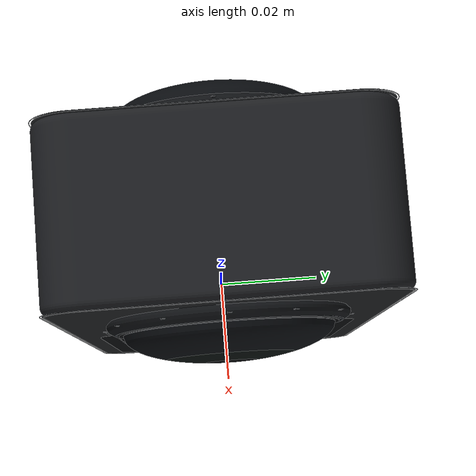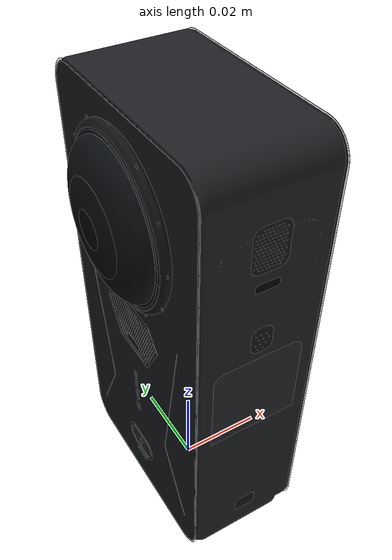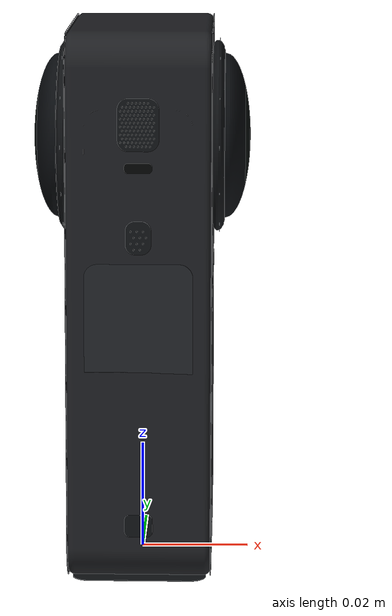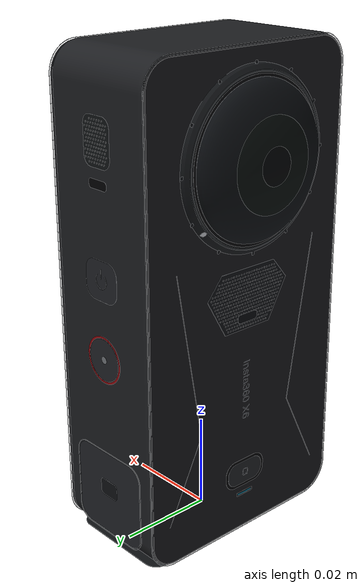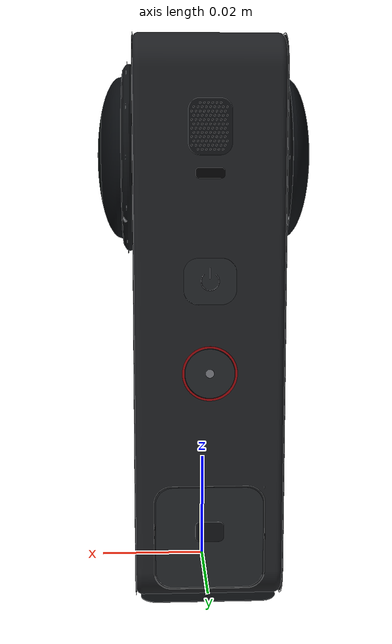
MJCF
<?xml version='1.0' encoding='utf-8'?>
<mujoco model="x6">
  <!--Independent approximate geometry; fixed sites are geometric references, not calibrated optical frames.-->
  <compiler angle="radian" inertiafromgeom="false" strippath="false" />
  <option timestep="0.002" gravity="0 0 -9.81" />
  <asset>
    <mesh name="x6_visual_mesh_0" file="../assets/meshes/visual/aperture.obj" scale="1 1 1" inertia="shell" />
    <mesh name="x6_visual_mesh_1" file="../assets/meshes/visual/coating_edge.obj" scale="1 1 1" inertia="shell" />
    <mesh name="x6_visual_mesh_2" file="../assets/meshes/visual/control.obj" scale="1 1 1" inertia="shell" />
    <mesh name="x6_visual_mesh_3" file="../assets/meshes/visual/display_edge.obj" scale="1 1 1" inertia="shell" />
    <mesh name="x6_visual_mesh_4" file="../assets/meshes/visual/glass_coating.obj" scale="1 1 1" inertia="shell" />
    <mesh name="x6_visual_mesh_5" file="../assets/meshes/visual/glass_outer.obj" scale="1 1 1" inertia="shell" />
    <mesh name="x6_visual_mesh_6" file="../assets/meshes/visual/grip_ridge.obj" scale="1 1 1" inertia="shell" />
    <mesh name="x6_visual_mesh_7" file="../assets/meshes/visual/housing.obj" scale="1 1 1" inertia="shell" />
    <mesh name="x6_visual_mesh_8" file="../assets/meshes/visual/housing_face.obj" scale="1 1 1" inertia="shell" />
    <mesh name="x6_visual_mesh_9" file="../assets/meshes/visual/lens_barrel.obj" scale="1 1 1" inertia="shell" />
    <mesh name="x6_visual_mesh_10" file="../assets/meshes/visual/lens_ring.obj" scale="1 1 1" inertia="shell" />
    <mesh name="x6_visual_mesh_11" file="../assets/meshes/visual/marking.obj" scale="1 1 1" inertia="shell" />
    <mesh name="x6_visual_mesh_12" file="../assets/meshes/visual/marking_dark.obj" scale="1 1 1" inertia="shell" />
    <mesh name="x6_visual_mesh_13" file="../assets/meshes/visual/marking_dim.obj" scale="1 1 1" inertia="shell" />
    <mesh name="x6_visual_mesh_14" file="../assets/meshes/visual/mount_metal.obj" scale="1 1 1" inertia="shell" />
    <mesh name="x6_visual_mesh_15" file="../assets/meshes/visual/optical_glass.obj" scale="1 1 1" inertia="shell" />
    <mesh name="x6_visual_mesh_16" file="../assets/meshes/visual/record_red.obj" scale="1 1 1" inertia="shell" />
    <mesh name="x6_visual_mesh_17" file="../assets/meshes/visual/rubber.obj" scale="1 1 1" inertia="shell" />
    <mesh name="x6_visual_mesh_18" file="../assets/meshes/visual/screen.obj" scale="1 1 1" inertia="shell" />
    <mesh name="x6_visual_mesh_19" file="../assets/meshes/visual/seam.obj" scale="1 1 1" inertia="shell" />
    <mesh name="x6_visual_mesh_20" file="../assets/meshes/visual/status_dim.obj" scale="1 1 1" inertia="shell" />
    <mesh name="x6_collision_mesh_0" file="../assets/meshes/collision/body.stl" scale="1 1 1" inertia="convex" />
    <mesh name="x6_collision_mesh_1" file="../assets/meshes/collision/front_lens.stl" scale="1 1 1" inertia="convex" />
    <mesh name="x6_collision_mesh_2" file="../assets/meshes/collision/rear_lens.stl" scale="1 1 1" inertia="convex" />
  </asset>
  <worldbody>
    <body name="x6_link">
      <inertial pos="0 0 0.05" mass="0.196" diaginertia="0.000204166666667 0.000189466666667 6.69666666667e-05" quat="1 0 0 0" />
      <geom name="x6_visual_0" type="mesh" mesh="x6_visual_mesh_0" pos="0 0 0" quat="1 0 0 0" density="0" group="2" contype="0" conaffinity="0" rgba="0.006 0.008 0.012 1" />
      <geom name="x6_visual_1" type="mesh" mesh="x6_visual_mesh_1" pos="0 0 0" quat="1 0 0 0" density="0" group="2" contype="0" conaffinity="0" rgba="0.075 0.09 0.12 1" />
      <geom name="x6_visual_2" type="mesh" mesh="x6_visual_mesh_2" pos="0 0 0" quat="1 0 0 0" density="0" group="2" contype="0" conaffinity="0" rgba="0.13 0.14 0.155 1" />
      <geom name="x6_visual_3" type="mesh" mesh="x6_visual_mesh_3" pos="0 0 0" quat="1 0 0 0" density="0" group="2" contype="0" conaffinity="0" rgba="0.115 0.126 0.144 1" />
      <geom name="x6_visual_4" type="mesh" mesh="x6_visual_mesh_4" pos="0 0 0" quat="1 0 0 0" density="0" group="2" contype="0" conaffinity="0" rgba="0.025 0.047 0.04 1" />
      <geom name="x6_visual_5" type="mesh" mesh="x6_visual_mesh_5" pos="0 0 0" quat="1 0 0 0" density="0" group="2" contype="0" conaffinity="0" rgba="0.035 0.045 0.058 1" />
      <geom name="x6_visual_6" type="mesh" mesh="x6_visual_mesh_6" pos="0 0 0" quat="1 0 0 0" density="0" group="2" contype="0" conaffinity="0" rgba="0.077 0.084 0.094 1" />
      <geom name="x6_visual_7" type="mesh" mesh="x6_visual_mesh_7" pos="0 0 0" quat="1 0 0 0" density="0" group="2" contype="0" conaffinity="0" rgba="0.115 0.12 0.132 1" />
      <geom name="x6_visual_8" type="mesh" mesh="x6_visual_mesh_8" pos="0 0 0" quat="1 0 0 0" density="0" group="2" contype="0" conaffinity="0" rgba="0.092 0.099 0.108 1" />
      <geom name="x6_visual_9" type="mesh" mesh="x6_visual_mesh_9" pos="0 0 0" quat="1 0 0 0" density="0" group="2" contype="0" conaffinity="0" rgba="0.06 0.068 0.078 1" />
      <geom name="x6_visual_10" type="mesh" mesh="x6_visual_mesh_10" pos="0 0 0" quat="1 0 0 0" density="0" group="2" contype="0" conaffinity="0" rgba="0.19 0.205 0.225 1" />
      <geom name="x6_visual_11" type="mesh" mesh="x6_visual_mesh_11" pos="0 0 0" quat="1 0 0 0" density="0" group="2" contype="0" conaffinity="0" rgba="0.72 0.73 0.75 1" />
      <geom name="x6_visual_12" type="mesh" mesh="x6_visual_mesh_12" pos="0 0 0" quat="1 0 0 0" density="0" group="2" contype="0" conaffinity="0" rgba="0.45 0.46 0.48 1" />
      <geom name="x6_visual_13" type="mesh" mesh="x6_visual_mesh_13" pos="0 0 0" quat="1 0 0 0" density="0" group="2" contype="0" conaffinity="0" rgba="0.4 0.42 0.45 1" />
      <geom name="x6_visual_14" type="mesh" mesh="x6_visual_mesh_14" pos="0 0 0" quat="1 0 0 0" density="0" group="2" contype="0" conaffinity="0" rgba="0.27 0.285 0.31 1" />
      <geom name="x6_visual_15" type="mesh" mesh="x6_visual_mesh_15" pos="0 0 0" quat="1 0 0 0" density="0" group="2" contype="0" conaffinity="0" rgba="0.008 0.014 0.02 1" />
      <geom name="x6_visual_16" type="mesh" mesh="x6_visual_mesh_16" pos="0 0 0" quat="1 0 0 0" density="0" group="2" contype="0" conaffinity="0" rgba="0.57 0.032 0.048 1" />
      <geom name="x6_visual_17" type="mesh" mesh="x6_visual_mesh_17" pos="0 0 0" quat="1 0 0 0" density="0" group="2" contype="0" conaffinity="0" rgba="0.065 0.075 0.085 1" />
      <geom name="x6_visual_18" type="mesh" mesh="x6_visual_mesh_18" pos="0 0 0" quat="1 0 0 0" density="0" group="2" contype="0" conaffinity="0" rgba="0.015 0.019 0.027 1" />
      <geom name="x6_visual_19" type="mesh" mesh="x6_visual_mesh_19" pos="0 0 0" quat="1 0 0 0" density="0" group="2" contype="0" conaffinity="0" rgba="0.025 0.03 0.035 1" />
      <geom name="x6_visual_20" type="mesh" mesh="x6_visual_mesh_20" pos="0 0 0" quat="1 0 0 0" density="0" group="2" contype="0" conaffinity="0" rgba="0.02 0.45 0.58 1" />
      <geom name="x6_collision_0" type="mesh" mesh="x6_collision_mesh_0" pos="0 0 0" quat="1 0 0 0" density="0" group="3" contype="1" conaffinity="1" rgba="0 0 0 0" />
      <geom name="x6_collision_1" type="mesh" mesh="x6_collision_mesh_1" pos="0 0 0" quat="1 0 0 0" density="0" group="3" contype="1" conaffinity="1" rgba="0 0 0 0" />
      <geom name="x6_collision_2" type="mesh" mesh="x6_collision_mesh_2" pos="0 0 0" quat="1 0 0 0" density="0" group="3" contype="1" conaffinity="1" rgba="0 0 0 0" />
      <site name="x6_mount" pos="0 0 0" quat="1 0 0 0" type="sphere" size="0.001" group="4" rgba="0 0 0 0" />
      <site name="x6_rear_lens_surface" pos="-0.02 0 0.079" quat="0.500000000002 -0.5 -0.499999999998 0.5" type="sphere" size="0.001" group="4" rgba="0 0 0 0" />
      <site name="x6_front_lens_surface" pos="0.02 0 0.079" quat="0.500000000002 -0.5 0.499999999998 -0.5" type="sphere" size="0.001" group="4" rgba="0 0 0 0" />
    </body>
  </worldbody>
</mujoco>
